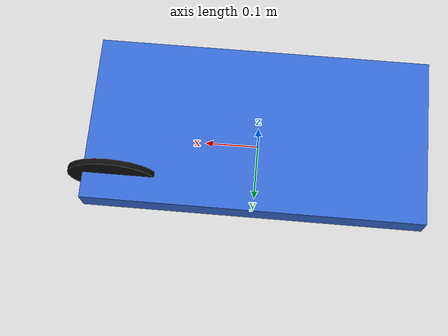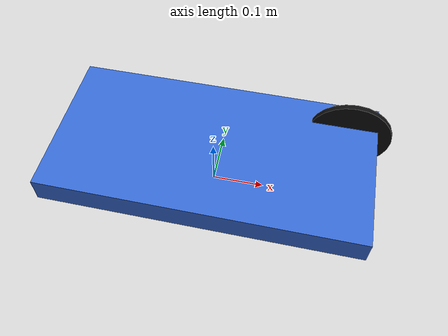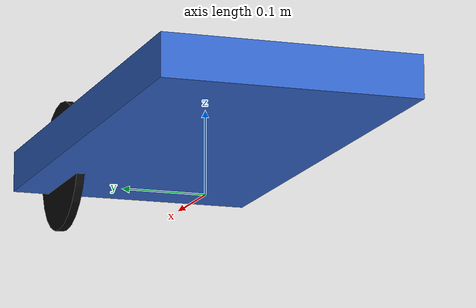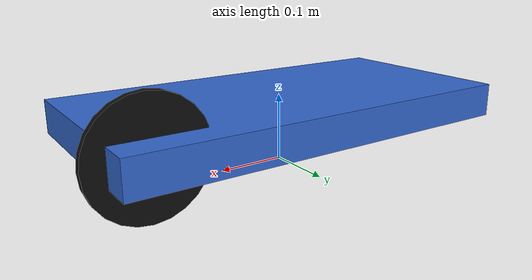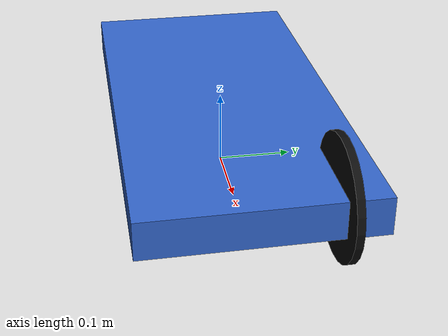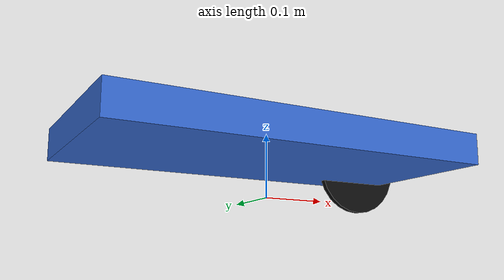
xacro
<?xml version="1.0"?>
<robot xmlns:xacro="http://www.ros.org/wiki/xacro" name="minimal_robot">

  <xacro:property name="track_width" value="0.2"/> <!-- distance between left and right wheels -->
  <xacro:property name="wheel_base" value="0.5"/> <!-- distance between front and rear axles -->
  <xacro:property name="wheel_radius" value="0.08"/>
  <xacro:property name="wheel_width" value="0.01"/>
  <xacro:property name="wheel_mass" value="1.0"/>
  <xacro:property name="chassis_length" value="${wheel_base + 0.1}"/>
  <xacro:property name="chassis_width" value="${track_width + 0.1}"/>
  <xacro:property name="chassis_height" value="0.05"/>
  <xacro:property name="chassis_mass" value="12.0"/>

  <link name="base_link_root"/>
  <joint name="root_to_base_link" type="fixed">
    <parent link="base_link_root"/>
    <child link="base_link"/>
    <origin xyz="0 0 0" rpy="0 0 0"/>
  </joint>

  <link name="base_link">
    <visual>
      <origin xyz="0 0 ${wheel_radius}" rpy="0 0 0"/>
      <geometry>
        <box size="${chassis_length} ${chassis_width} ${chassis_height}"/>
      </geometry>
      <material name="blue"><color rgba="0.2 0.4 0.8 1.0"/></material>
    </visual>
  </link>

  <!-- front-left wheel -->
  <link name="wheel_front_left">
    <inertial>
      <origin xyz="0 0 0" rpy="-1.5708 0 0"/>
      <mass value="${wheel_mass}"/>
      <inertia ixx="${(1.0/12.0)*wheel_mass*(3*wheel_radius*wheel_radius + wheel_width*wheel_width)}" ixy="0" ixz="0" iyy="${0.5*wheel_mass*wheel_radius*wheel_radius}" iyz="0" izz="${(1.0/12.0)*wheel_mass*(3*wheel_radius*wheel_radius + wheel_width*wheel_width)}"/>
    </inertial>
    <visual>
      <origin xyz="0 0 0" rpy="-1.5708 0 0"/>
      <geometry>
        <cylinder radius="${wheel_radius}" length="${wheel_width}"/>
      </geometry>
      <material name="black"><color rgba="0.05 0.05 0.05 1"/></material>
    </visual>
    <collision>
      <origin xyz="0 0 0" rpy="-1.5708 0 0"/>
      <geometry>
        <cylinder radius="${wheel_radius}" length="${wheel_width}"/>
      </geometry>
    </collision>
  </link>

  <joint name="wheel_front_left_joint" type="continuous">
    <parent link="base_link"/>
    <child link="wheel_front_left"/>
    <origin xyz="${wheel_base/2} ${track_width/2} ${wheel_radius}" rpy="0 0 0"/>
    <axis xyz="0 1 0"/>
  </joint>
</robot>
